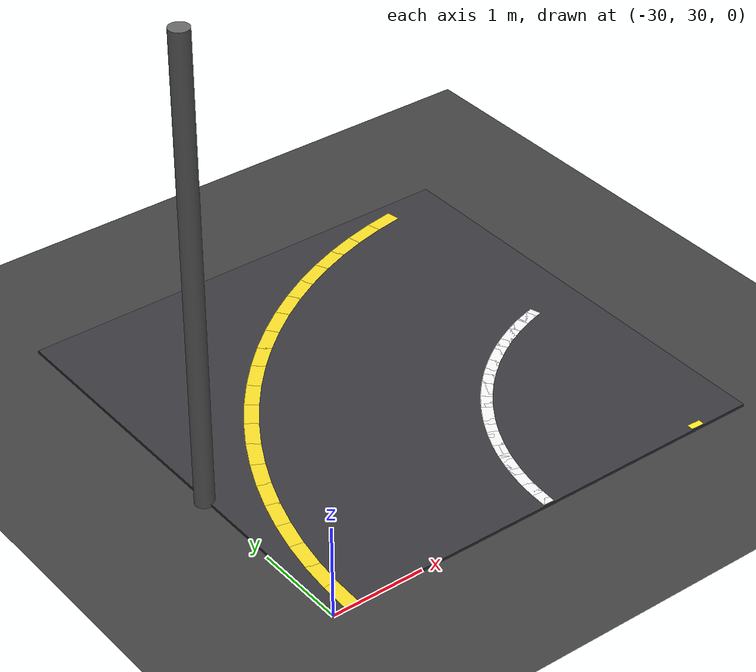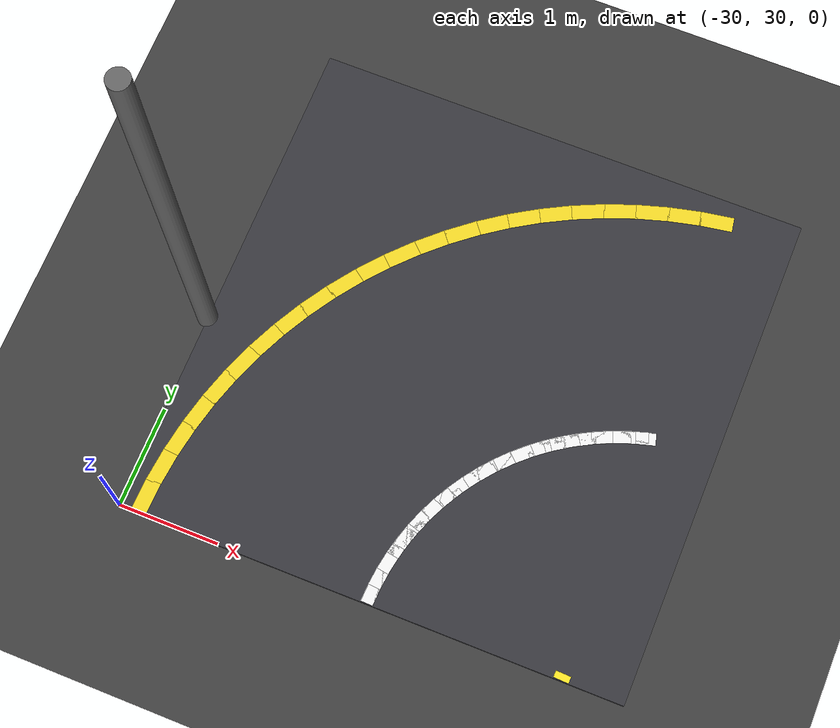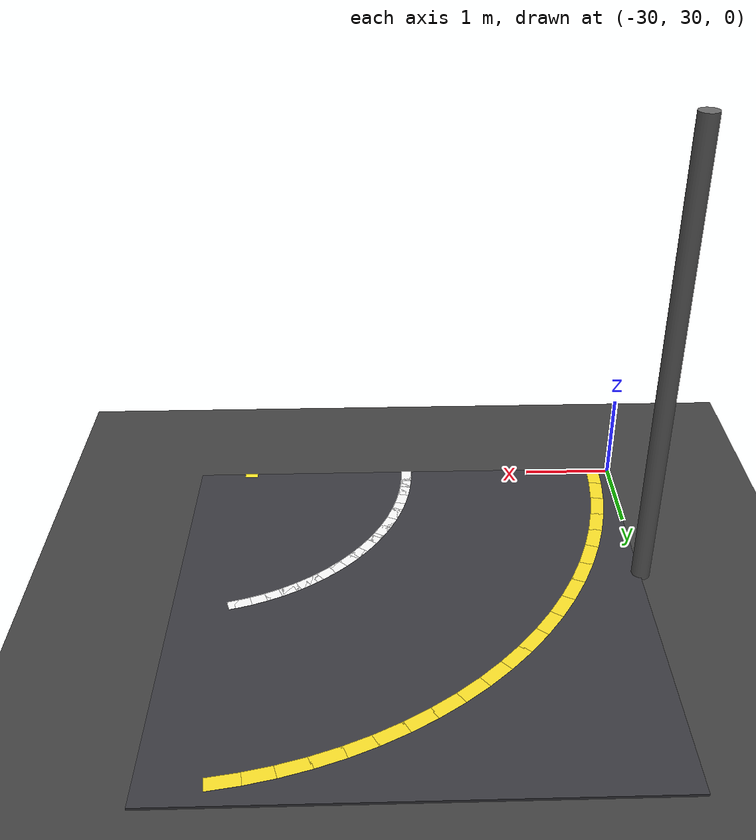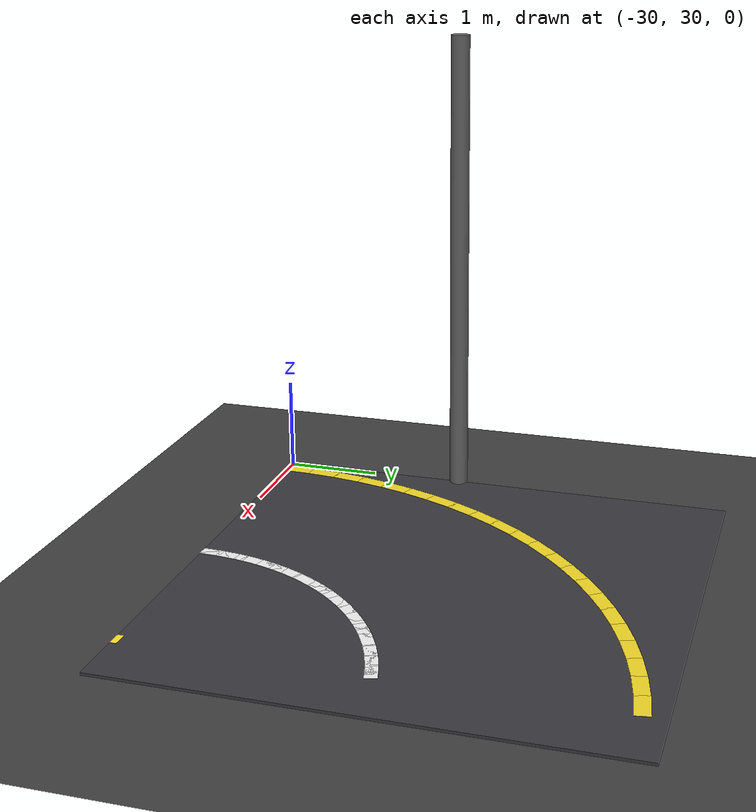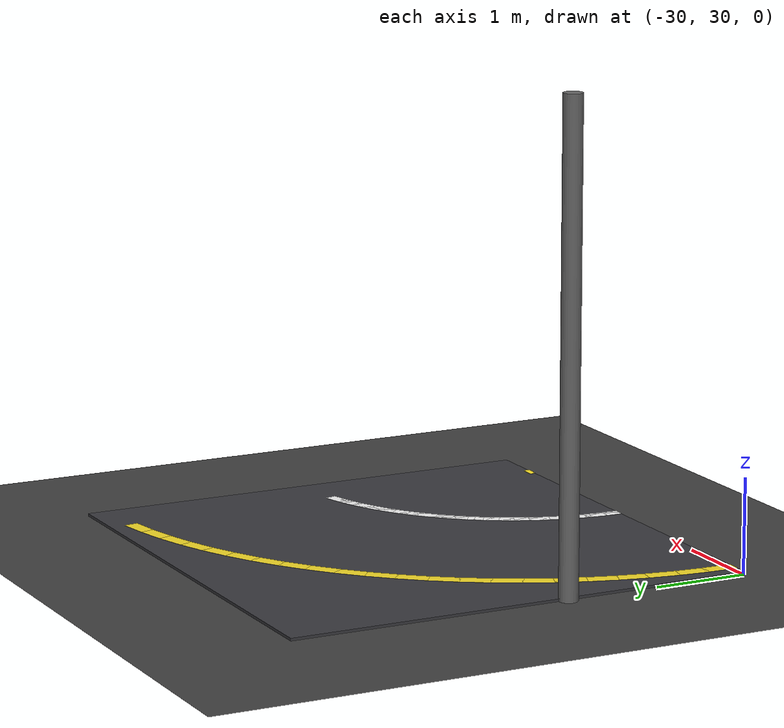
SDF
<sdf version="1.7">
 <world name="compact_city">
  <model name="ground_plane">
   <static>1</static>
   <pose>0 0 0.01 0 -0 0</pose>
   <link name="link">
    <collision name="collision">
     <geometry><plane><normal>0 0 1</normal><size>200 200</size></plane></geometry>
    </collision>
    <visual name="visual">
     <geometry><plane><normal>0 0 1</normal><size>200 200</size></plane></geometry>
     <material>
      <ambient>0.2 0.2 0.2 1</ambient>
      <diffuse>0.25 0.25 0.25 1</diffuse>
      <specular>0.1 0.1 0.1 1</specular>
     </material>
    </visual>
   </link>
  </model>
  <model name="road_tile_1">
   <static>1</static>
   <pose>-27.4902 32.484 0.015 0 -0 0</pose>
   <link name="link">
    <collision name="collision"><geometry><box><size>5 5 0.03</size></box></geometry></collision>
    <visual name="visual">
     <geometry><box><size>5 5 0.03</size></box></geometry>
     <material>
      <ambient>0.18 0.18 0.2 1</ambient>
      <diffuse>0.22 0.22 0.24 1</diffuse>
      <specular>0.1 0.1 0.1 1</specular>
     </material>
    </visual>
   </link>
  </model>
  <model name="ac_358">
   <static>1</static>
   <pose>-25.7257 32.3924 0.038 0 0 -2.84708</pose>
   <link name="link">
    <visual name="v">
     <geometry><box><size>0.173411 0.12 0.002</size></box></geometry>
     <material><ambient>1 1 1 1</ambient><diffuse>0.95 0.95 0.95 1</diffuse></material>
    </visual>
   </link>
  </model>
  <model name="ac_359">
   <static>1</static>
   <pose>-25.8806 32.3398 0.038 0 0 -2.78159</pose>
   <link name="link">
    <visual name="v">
     <geometry><box><size>0.173411 0.12 0.002</size></box></geometry>
     <material><ambient>1 1 1 1</ambient><diffuse>0.95 0.95 0.95 1</diffuse></material>
    </visual>
   </link>
  </model>
  <model name="ac_360">
   <static>1</static>
   <pose>-26.0318 32.2772 0.038 0 0 -2.71618</pose>
   <link name="link">
    <visual name="v">
     <geometry><box><size>0.173411 0.12 0.002</size></box></geometry>
     <material><ambient>1 1 1 1</ambient><diffuse>0.95 0.95 0.95 1</diffuse></material>
    </visual>
   </link>
  </model>
  <model name="ac_361">
   <static>1</static>
   <pose>-26.1785 32.2048 0.038 0 0 -2.65069</pose>
   <link name="link">
    <visual name="v">
     <geometry><box><size>0.173411 0.12 0.002</size></box></geometry>
     <material><ambient>1 1 1 1</ambient><diffuse>0.95 0.95 0.95 1</diffuse></material>
    </visual>
   </link>
  </model>
  <model name="ac_362">
   <static>1</static>
   <pose>-26.3202 32.123 0.038 0 0 -2.58528</pose>
   <link name="link">
    <visual name="v">
     <geometry><box><size>0.173411 0.12 0.002</size></box></geometry>
     <material><ambient>1 1 1 1</ambient><diffuse>0.95 0.95 0.95 1</diffuse></material>
    </visual>
   </link>
  </model>
  <model name="ac_363">
   <static>1</static>
   <pose>-26.4562 32.0321 0.038 0 0 -2.51979</pose>
   <link name="link">
    <visual name="v">
     <geometry><box><size>0.173411 0.12 0.002</size></box></geometry>
     <material><ambient>1 1 1 1</ambient><diffuse>0.95 0.95 0.95 1</diffuse></material>
    </visual>
   </link>
  </model>
  <model name="ac_364">
   <static>1</static>
   <pose>-26.586 31.9325 0.038 0 0 -2.45438</pose>
   <link name="link">
    <visual name="v">
     <geometry><box><size>0.173411 0.12 0.002</size></box></geometry>
     <material><ambient>1 1 1 1</ambient><diffuse>0.95 0.95 0.95 1</diffuse></material>
    </visual>
   </link>
  </model>
  <model name="ac_365">
   <static>1</static>
   <pose>-26.709 31.8247 0.038 0 0 -2.38889</pose>
   <link name="link">
    <visual name="v">
     <geometry><box><size>0.173411 0.12 0.002</size></box></geometry>
     <material><ambient>1 1 1 1</ambient><diffuse>0.95 0.95 0.95 1</diffuse></material>
    </visual>
   </link>
  </model>
  <model name="ac_366">
   <static>1</static>
   <pose>-26.8247 31.709 0.038 0 0 -2.32348</pose>
   <link name="link">
    <visual name="v">
     <geometry><box><size>0.173411 0.12 0.002</size></box></geometry>
     <material><ambient>1 1 1 1</ambient><diffuse>0.95 0.95 0.95 1</diffuse></material>
    </visual>
   </link>
  </model>
  <model name="ac_367">
   <static>1</static>
   <pose>-26.9325 31.586 0.038 0 0 -2.25799</pose>
   <link name="link">
    <visual name="v">
     <geometry><box><size>0.173411 0.12 0.002</size></box></geometry>
     <material><ambient>1 1 1 1</ambient><diffuse>0.95 0.95 0.95 1</diffuse></material>
    </visual>
   </link>
  </model>
  <model name="ac_368">
   <static>1</static>
   <pose>-27.0321 31.4562 0.038 0 0 -2.19258</pose>
   <link name="link">
    <visual name="v">
     <geometry><box><size>0.173411 0.12 0.002</size></box></geometry>
     <material><ambient>1 1 1 1</ambient><diffuse>0.95 0.95 0.95 1</diffuse></material>
    </visual>
   </link>
  </model>
  <model name="ac_369">
   <static>1</static>
   <pose>-27.123 31.3202 0.038 0 0 -2.12709</pose>
   <link name="link">
    <visual name="v">
     <geometry><box><size>0.173411 0.12 0.002</size></box></geometry>
     <material><ambient>1 1 1 1</ambient><diffuse>0.95 0.95 0.95 1</diffuse></material>
    </visual>
   </link>
  </model>
  <model name="ac_370">
   <static>1</static>
   <pose>-27.2048 31.1785 0.038 0 0 -2.06169</pose>
   <link name="link">
    <visual name="v">
     <geometry><box><size>0.173411 0.12 0.002</size></box></geometry>
     <material><ambient>1 1 1 1</ambient><diffuse>0.95 0.95 0.95 1</diffuse></material>
    </visual>
   </link>
  </model>
  <model name="ac_371">
   <static>1</static>
   <pose>-27.2772 31.0318 0.038 0 0 -1.99619</pose>
   <link name="link">
    <visual name="v">
     <geometry><box><size>0.173411 0.12 0.002</size></box></geometry>
     <material><ambient>1 1 1 1</ambient><diffuse>0.95 0.95 0.95 1</diffuse></material>
    </visual>
   </link>
  </model>
  <model name="ac_372">
   <static>1</static>
   <pose>-27.3398 30.8806 0.038 0 0 -1.93078</pose>
   <link name="link">
    <visual name="v">
     <geometry><box><size>0.173411 0.12 0.002</size></box></geometry>
     <material><ambient>1 1 1 1</ambient><diffuse>0.95 0.95 0.95 1</diffuse></material>
    </visual>
   </link>
  </model>
  <model name="ac_373">
   <static>1</static>
   <pose>-27.3924 30.7257 0.038 0 0 -1.86529</pose>
   <link name="link">
    <visual name="v">
     <geometry><box><size>0.173411 0.12 0.002</size></box></geometry>
     <material><ambient>1 1 1 1</ambient><diffuse>0.95 0.95 0.95 1</diffuse></material>
    </visual>
   </link>
  </model>
  <model name="ac_374">
   <static>1</static>
   <pose>-27.4347 30.5677 0.038 0 0 -1.79988</pose>
   <link name="link">
    <visual name="v">
     <geometry><box><size>0.173411 0.12 0.002</size></box></geometry>
     <material><ambient>1 1 1 1</ambient><diffuse>0.95 0.95 0.95 1</diffuse></material>
    </visual>
   </link>
  </model>
  <model name="ac_375">
   <static>1</static>
   <pose>-27.4666 30.4072 0.038 0 0 -1.73439</pose>
   <link name="link">
    <visual name="v">
     <geometry><box><size>0.173411 0.12 0.002</size></box></geometry>
     <material><ambient>1 1 1 1</ambient><diffuse>0.95 0.95 0.95 1</diffuse></material>
    </visual>
   </link>
  </model>
  <model name="ac_376">
   <static>1</static>
   <pose>-27.488 30.245 0.038 0 0 -1.66898</pose>
   <link name="link">
    <visual name="v">
     <geometry><box><size>0.173411 0.12 0.002</size></box></geometry>
     <material><ambient>1 1 1 1</ambient><diffuse>0.95 0.95 0.95 1</diffuse></material>
    </visual>
   </link>
  </model>
  <model name="ac_377">
   <static>1</static>
   <pose>-27.4987 30.0818 0.038 0 0 -1.60349</pose>
   <link name="link">
    <visual name="v">
     <geometry><box><size>0.173411 0.12 0.002</size></box></geometry>
     <material><ambient>1 1 1 1</ambient><diffuse>0.95 0.95 0.95 1</diffuse></material>
    </visual>
   </link>
  </model>
  <model name="ao_404">
   <static>1</static>
   <pose>-25.7819 34.7359 0.038 0 0 -2.97798</pose>
   <link name="link">
    <visual name="v">
     <geometry><box><size>0.329808 0.15 0.002</size></box></geometry>
     <material><ambient>0.9 0.8 0.1 1</ambient><diffuse>0.95 0.85 0.15 1</diffuse></material>
    </visual>
   </link>
  </model>
  <model name="ao_405">
   <static>1</static>
   <pose>-26.09 34.6746 0.038 0 0 -2.91249</pose>
   <link name="link">
    <visual name="v">
     <geometry><box><size>0.329808 0.15 0.002</size></box></geometry>
     <material><ambient>0.9 0.8 0.1 1</ambient><diffuse>0.95 0.85 0.15 1</diffuse></material>
    </visual>
   </link>
  </model>
  <model name="ao_406">
   <static>1</static>
   <pose>-26.3934 34.5933 0.038 0 0 -2.84708</pose>
   <link name="link">
    <visual name="v">
     <geometry><box><size>0.329808 0.15 0.002</size></box></geometry>
     <material><ambient>0.9 0.8 0.1 1</ambient><diffuse>0.95 0.85 0.15 1</diffuse></material>
    </visual>
   </link>
  </model>
  <model name="ao_407">
   <static>1</static>
   <pose>-26.6908 34.4923 0.038 0 0 -2.78159</pose>
   <link name="link">
    <visual name="v">
     <geometry><box><size>0.329808 0.15 0.002</size></box></geometry>
     <material><ambient>0.9 0.8 0.1 1</ambient><diffuse>0.95 0.85 0.15 1</diffuse></material>
    </visual>
   </link>
  </model>
  <model name="ao_408">
   <static>1</static>
   <pose>-26.981 34.3721 0.038 0 0 -2.71618</pose>
   <link name="link">
    <visual name="v">
     <geometry><box><size>0.329808 0.15 0.002</size></box></geometry>
     <material><ambient>0.9 0.8 0.1 1</ambient><diffuse>0.95 0.85 0.15 1</diffuse></material>
    </visual>
   </link>
  </model>
  <model name="ao_409">
   <static>1</static>
   <pose>-27.2627 34.2332 0.038 0 0 -2.65069</pose>
   <link name="link">
    <visual name="v">
     <geometry><box><size>0.329808 0.15 0.002</size></box></geometry>
     <material><ambient>0.9 0.8 0.1 1</ambient><diffuse>0.95 0.85 0.15 1</diffuse></material>
    </visual>
   </link>
  </model>
  <model name="ao_410">
   <static>1</static>
   <pose>-27.5347 34.0762 0.038 0 0 -2.58528</pose>
   <link name="link">
    <visual name="v">
     <geometry><box><size>0.329808 0.15 0.002</size></box></geometry>
     <material><ambient>0.9 0.8 0.1 1</ambient><diffuse>0.95 0.85 0.15 1</diffuse></material>
    </visual>
   </link>
  </model>
  <model name="ao_411">
   <static>1</static>
   <pose>-27.7959 33.9017 0.038 0 0 -2.51979</pose>
   <link name="link">
    <visual name="v">
     <geometry><box><size>0.329808 0.15 0.002</size></box></geometry>
     <material><ambient>0.9 0.8 0.1 1</ambient><diffuse>0.95 0.85 0.15 1</diffuse></material>
    </visual>
   </link>
  </model>
  <model name="ao_412">
   <static>1</static>
   <pose>-28.0451 33.7105 0.038 0 0 -2.45438</pose>
   <link name="link">
    <visual name="v">
     <geometry><box><size>0.329808 0.15 0.002</size></box></geometry>
     <material><ambient>0.9 0.8 0.1 1</ambient><diffuse>0.95 0.85 0.15 1</diffuse></material>
    </visual>
   </link>
  </model>
  <model name="ao_413">
   <static>1</static>
   <pose>-28.2812 33.5033 0.038 0 0 -2.38889</pose>
   <link name="link">
    <visual name="v">
     <geometry><box><size>0.329808 0.15 0.002</size></box></geometry>
     <material><ambient>0.9 0.8 0.1 1</ambient><diffuse>0.95 0.85 0.15 1</diffuse></material>
    </visual>
   </link>
  </model>
  <model name="ao_414">
   <static>1</static>
   <pose>-28.5033 33.2812 0.038 0 0 -2.32348</pose>
   <link name="link">
    <visual name="v">
     <geometry><box><size>0.329808 0.15 0.002</size></box></geometry>
     <material><ambient>0.9 0.8 0.1 1</ambient><diffuse>0.95 0.85 0.15 1</diffuse></material>
    </visual>
   </link>
  </model>
  <model name="ao_415">
   <static>1</static>
   <pose>-28.7105 33.0451 0.038 0 0 -2.25799</pose>
   <link name="link">
    <visual name="v">
     <geometry><box><size>0.329808 0.15 0.002</size></box></geometry>
     <material><ambient>0.9 0.8 0.1 1</ambient><diffuse>0.95 0.85 0.15 1</diffuse></material>
    </visual>
   </link>
  </model>
  <model name="ao_416">
   <static>1</static>
   <pose>-28.9017 32.7959 0.038 0 0 -2.19258</pose>
   <link name="link">
    <visual name="v">
     <geometry><box><size>0.329808 0.15 0.002</size></box></geometry>
     <material><ambient>0.9 0.8 0.1 1</ambient><diffuse>0.95 0.85 0.15 1</diffuse></material>
    </visual>
   </link>
  </model>
  <model name="ao_417">
   <static>1</static>
   <pose>-29.0762 32.5347 0.038 0 0 -2.12709</pose>
   <link name="link">
    <visual name="v">
     <geometry><box><size>0.329808 0.15 0.002</size></box></geometry>
     <material><ambient>0.9 0.8 0.1 1</ambient><diffuse>0.95 0.85 0.15 1</diffuse></material>
    </visual>
   </link>
  </model>
  <model name="ao_418">
   <static>1</static>
   <pose>-29.2332 32.2627 0.038 0 0 -2.06169</pose>
   <link name="link">
    <visual name="v">
     <geometry><box><size>0.329808 0.15 0.002</size></box></geometry>
     <material><ambient>0.9 0.8 0.1 1</ambient><diffuse>0.95 0.85 0.15 1</diffuse></material>
    </visual>
   </link>
  </model>
  <model name="ao_419">
   <static>1</static>
   <pose>-29.3721 31.981 0.038 0 0 -1.99619</pose>
   <link name="link">
    <visual name="v">
     <geometry><box><size>0.329808 0.15 0.002</size></box></geometry>
     <material><ambient>0.9 0.8 0.1 1</ambient><diffuse>0.95 0.85 0.15 1</diffuse></material>
    </visual>
   </link>
  </model>
  <model name="ao_420">
   <static>1</static>
   <pose>-29.4923 31.6908 0.038 0 0 -1.93078</pose>
   <link name="link">
    <visual name="v">
     <geometry><box><size>0.329808 0.15 0.002</size></box></geometry>
     <material><ambient>0.9 0.8 0.1 1</ambient><diffuse>0.95 0.85 0.15 1</diffuse></material>
    </visual>
   </link>
  </model>
  <model name="ao_421">
   <static>1</static>
   <pose>-29.5933 31.3934 0.038 0 0 -1.86529</pose>
   <link name="link">
    <visual name="v">
     <geometry><box><size>0.329808 0.15 0.002</size></box></geometry>
     <material><ambient>0.9 0.8 0.1 1</ambient><diffuse>0.95 0.85 0.15 1</diffuse></material>
    </visual>
   </link>
  </model>
  <model name="ao_422">
   <static>1</static>
   <pose>-29.6746 31.09 0.038 0 0 -1.79988</pose>
   <link name="link">
    <visual name="v">
     <geometry><box><size>0.329808 0.15 0.002</size></box></geometry>
     <material><ambient>0.9 0.8 0.1 1</ambient><diffuse>0.95 0.85 0.15 1</diffuse></material>
    </visual>
   </link>
  </model>
  <model name="ao_423">
   <static>1</static>
   <pose>-29.7359 30.7819 0.038 0 0 -1.73439</pose>
   <link name="link">
    <visual name="v">
     <geometry><box><size>0.329808 0.15 0.002</size></box></geometry>
     <material><ambient>0.9 0.8 0.1 1</ambient><diffuse>0.95 0.85 0.15 1</diffuse></material>
    </visual>
   </link>
  </model>
  <model name="ao_424">
   <static>1</static>
   <pose>-29.7769 30.4705 0.038 0 0 -1.66898</pose>
   <link name="link">
    <visual name="v">
     <geometry><box><size>0.329808 0.15 0.002</size></box></geometry>
     <material><ambient>0.9 0.8 0.1 1</ambient><diffuse>0.95 0.85 0.15 1</diffuse></material>
    </visual>
   </link>
  </model>
  <model name="ao_425">
   <static>1</static>
   <pose>-29.7974 30.1571 0.038 0 0 -1.60349</pose>
   <link name="link">
    <visual name="v">
     <geometry><box><size>0.329808 0.15 0.002</size></box></geometry>
     <material><ambient>0.9 0.8 0.1 1</ambient><diffuse>0.95 0.85 0.15 1</diffuse></material>
    </visual>
   </link>
  </model>
  <model name="pole_1">
   <static>1</static>
   <pose>-30 32 2.5 0 -0 0</pose>
   <link name="link">
    <collision name="collision">
     <geometry><cylinder><radius>0.1</radius><length>5</length></cylinder></geometry>
    </collision>
    <visual name="visual">
     <geometry><cylinder><radius>0.1</radius><length>5</length></cylinder></geometry>
     <material><ambient>0.3 0.3 0.3 1</ambient><diffuse>0.4 0.4 0.4 1</diffuse></material>
    </visual>
   </link>
  </model>
  <model name="arc_c_200">
   <static>1</static>
   <pose>-25.6781 32.4043 0.038 0 0 -2.8667</pose>
   <link name="link">
    <visual name="visual">
     <geometry><box><size>0.216299 0.12 0.002</size></box></geometry>
     <material><ambient>1 1 1 1</ambient><diffuse>0.95 0.95 0.95 1</diffuse></material>
    </visual>
   </link>
  </model>
  <model name="arc_c_201">
   <static>1</static>
   <pose>-25.8646 32.3437 0.038 0 0 -2.7882</pose>
   <link name="link">
    <visual name="visual">
     <geometry><box><size>0.216299 0.12 0.002</size></box></geometry>
     <material><ambient>1 1 1 1</ambient><diffuse>0.95 0.95 0.95 1</diffuse></material>
    </visual>
   </link>
  </model>
  <model name="arc_c_202">
   <static>1</static>
   <pose>-26.0458 32.2686 0.038 0 0 -2.7096</pose>
   <link name="link">
    <visual name="visual">
     <geometry><box><size>0.216299 0.12 0.002</size></box></geometry>
     <material><ambient>1 1 1 1</ambient><diffuse>0.95 0.95 0.95 1</diffuse></material>
    </visual>
   </link>
  </model>
  <model name="arc_c_203">
   <static>1</static>
   <pose>-26.2206 32.1796 0.038 0 0 -2.6311</pose>
   <link name="link">
    <visual name="visual">
     <geometry><box><size>0.216299 0.12 0.002</size></box></geometry>
     <material><ambient>1 1 1 1</ambient><diffuse>0.95 0.95 0.95 1</diffuse></material>
    </visual>
   </link>
  </model>
  <model name="arc_c_204">
   <static>1</static>
   <pose>-26.3879 32.0771 0.038 0 0 -2.5525</pose>
   <link name="link">
    <visual name="visual">
     <geometry><box><size>0.216299 0.12 0.002</size></box></geometry>
     <material><ambient>1 1 1 1</ambient><diffuse>0.95 0.95 0.95 1</diffuse></material>
    </visual>
   </link>
  </model>
  <model name="arc_c_205">
   <static>1</static>
   <pose>-26.5465 31.9618 0.038 0 0 -2.474</pose>
   <link name="link">
    <visual name="visual">
     <geometry><box><size>0.216299 0.12 0.002</size></box></geometry>
     <material><ambient>1 1 1 1</ambient><diffuse>0.95 0.95 0.95 1</diffuse></material>
    </visual>
   </link>
  </model>
  <model name="arc_c_206">
   <static>1</static>
   <pose>-26.6957 31.8344 0.038 0 0 -2.3955</pose>
   <link name="link">
    <visual name="visual">
     <geometry><box><size>0.216299 0.12 0.002</size></box></geometry>
     <material><ambient>1 1 1 1</ambient><diffuse>0.95 0.95 0.95 1</diffuse></material>
    </visual>
   </link>
  </model>
  <model name="arc_c_207">
   <static>1</static>
   <pose>-26.8344 31.6957 0.038 0 0 -2.3169</pose>
   <link name="link">
    <visual name="visual">
     <geometry><box><size>0.216299 0.12 0.002</size></box></geometry>
     <material><ambient>1 1 1 1</ambient><diffuse>0.95 0.95 0.95 1</diffuse></material>
    </visual>
   </link>
  </model>
  <model name="arc_c_208">
   <static>1</static>
   <pose>-26.9618 31.5465 0.038 0 0 -2.2384</pose>
   <link name="link">
    <visual name="visual">
     <geometry><box><size>0.216299 0.12 0.002</size></box></geometry>
     <material><ambient>1 1 1 1</ambient><diffuse>0.95 0.95 0.95 1</diffuse></material>
    </visual>
   </link>
  </model>
  <model name="arc_c_209">
   <static>1</static>
   <pose>-27.0771 31.3879 0.038 0 0 -2.1598</pose>
   <link name="link">
    <visual name="visual">
     <geometry><box><size>0.216299 0.12 0.002</size></box></geometry>
     <material><ambient>1 1 1 1</ambient><diffuse>0.95 0.95 0.95 1</diffuse></material>
    </visual>
   </link>
  </model>
  <model name="arc_c_210">
   <static>1</static>
   <pose>-27.1796 31.2206 0.038 0 0 -2.0813</pose>
   <link name="link">
    <visual name="visual">
     <geometry><box><size>0.216299 0.12 0.002</size></box></geometry>
     <material><ambient>1 1 1 1</ambient><diffuse>0.95 0.95 0.95 1</diffuse></material>
    </visual>
   </link>
  </model>
  <model name="arc_c_211">
   <static>1</static>
   <pose>-27.2686 31.0458 0.038 0 0 -2.0028</pose>
   <link name="link">
    <visual name="visual">
     <geometry><box><size>0.216299 0.12 0.002</size></box></geometry>
     <material><ambient>1 1 1 1</ambient><diffuse>0.95 0.95 0.95 1</diffuse></material>
    </visual>
   </link>
  </model>
  <model name="arc_c_212">
   <static>1</static>
   <pose>-27.3437 30.8646 0.038 0 0 -1.9242</pose>
   <link name="link">
    <visual name="visual">
     <geometry><box><size>0.216299 0.12 0.002</size></box></geometry>
     <material><ambient>1 1 1 1</ambient><diffuse>0.95 0.95 0.95 1</diffuse></material>
    </visual>
   </link>
  </model>
  <model name="arc_c_213">
   <static>1</static>
   <pose>-27.4043 30.6781 0.038 0 0 -1.8457</pose>
   <link name="link">
    <visual name="visual">
     <geometry><box><size>0.216299 0.12 0.002</size></box></geometry>
     <material><ambient>1 1 1 1</ambient><diffuse>0.95 0.95 0.95 1</diffuse></material>
    </visual>
   </link>
  </model>
  <model name="arc_c_214">
   <static>1</static>
   <pose>-27.4501 30.4873 0.038 0 0 -1.7671</pose>
   <link name="link">
    <visual name="visual">
     <geometry><box><size>0.216299 0.12 0.002</size></box></geometry>
     <material><ambient>1 1 1 1</ambient><diffuse>0.95 0.95 0.95 1</diffuse></material>
    </visual>
   </link>
  </model>
  <model name="arc_c_215">
   <static>1</static>
   <pose>-27.4808 30.2936 0.038 0 0 -1.6886</pose>
   <link name="link">
    <visual name="visual">
     <geometry><box><size>0.216299 0.12 0.002</size></box></geometry>
     <material><ambient>1 1 1 1</ambient><diffuse>0.95 0.95 0.95 1</diffuse></material>
    </visual>
   </link>
  </model>
  <model name="arc_c_216">
   <static>1</static>
   <pose>-27.4961 30.0981 0.038 0 0 -1.6101</pose>
   <link name="link">
    <visual name="visual">
     <geometry><box><size>0.216299 0.12 0.002</size></box></geometry>
     <material><ambient>1 1 1 1</ambient><diffuse>0.95 0.95 0.95 1</diffuse></material>
    </visual>
   </link>
  </model>
  <model name="arc_in_236">
   <static>1</static>
   <pose>-25.5991 30.0235 0.038 0 0 -1.6101</pose>
   <link name="link">
    <visual name="visual">
     <geometry><box><size>0.067112 0.15 0.002</size></box></geometry>
     <material><ambient>0.95 0.85 0.1 1</ambient><diffuse>1 0.9 0.15 1</diffuse></material>
    </visual>
   </link>
  </model>
 </world>
</sdf>
